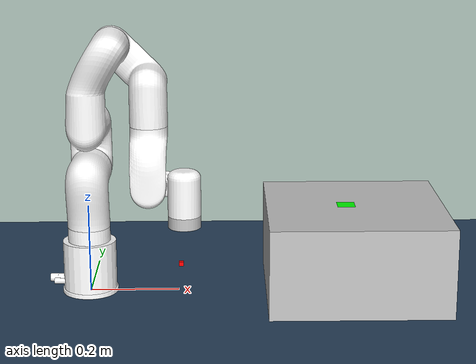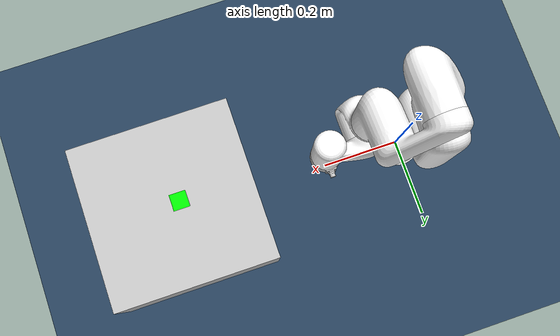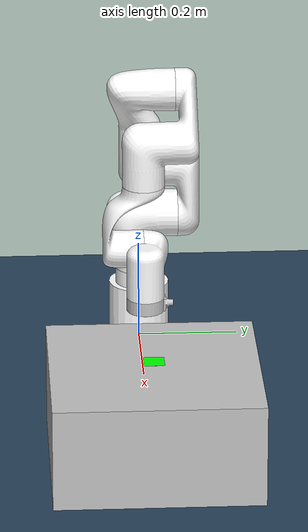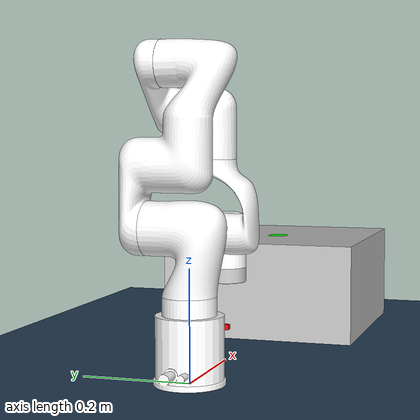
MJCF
<mujoco model="xarm6 scene">
    <include file="xarm6_no_gripper.xml"/>

    <statistic center="0.2 0 0.4" extent=".65"/>

    <visual>
        <headlight diffuse="0.6 0.6 0.6" ambient="0.3 0.3 0.3" specular="0 0 0"/>
        <rgba haze="0.15 0.25 0.35 1"/>
        <global azimuth="150" elevation="-20"/>
    </visual>

    <asset>
        <texture type="skybox" builtin="gradient" rgb1="0.3 0.5 0.7" rgb2="0 0 0" width="512" height="3072"/>
        <texture type="2d" name="groundplane" builtin="checker" mark="edge" rgb1="0.2 0.3 0.4" rgb2="0.1 0.2 0.3"
            markrgb="0.8 0.8 0.8" width="300" height="300"/>
        <material name="groundplane" texture="groundplane" texuniform="true" texrepeat="5 5" reflectance="0.2"/>
    </asset>

    <worldbody>
        <light pos="0 0 1.5" dir="0 0 -1" directional="true"/>
        <geom name="floor" size="1 1 " type="plane" material="groundplane" condim="3" contype="1" conaffinity="1"/>
        <geom type="cylinder" size=".06 .06" pos="0 0 .06" rgba="1 1 1 1"/>
        <body name="wall" pos="0.6 0.0 0.1">
            <geom type="box" class = "collision" group = "0" size=".2 .2 .1"  rgba="0.753 0.753 0.753 1"/>
            <site name="target" type="box" size="0.02 0.02 0.0001" pos="-0.02 0 0.1" rgba="0 1 0 1" />
        </body>
    </worldbody>

    <!-- Déclaration du capteur de force -->
    <sensor>
        <force name="contact_force" site="ee_center_site" />
    </sensor>
</mujoco>

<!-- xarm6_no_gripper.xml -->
<mujoco model="xarm6">
  <compiler angle="radian" autolimits="true" meshdir="meshes"/>

  <option integrator="implicitfast"/>

  <asset>
    <material name="white" rgba="1 1 1 1"/>
    <material name="gray" rgba="0.753 0.753 0.753 1"/>
    <material name="black" rgba="0.149 0.149 0.149 1"/>

    <mesh file="link_base.stl"/>
    <mesh file="link1.stl"/>
    <mesh file="link2.stl"/>
    <mesh file="link3.stl"/>
    <mesh file="link4.stl"/>
    <mesh file="link5.stl"/>
    <mesh file="end_tool.stl"/>
    <mesh file="base_link.stl"/>
  </asset>

  <default>
    <default class="xarm6">
      <geom type="mesh" material="white"/>
      <joint axis="0 0 1" range="-6.28319 6.28319" frictionloss="1"/>
      <general biastype="affine" ctrlrange="-6.28319 6.28319"/>
      <default class="size1">
        <joint damping="10"/>
        <general gainprm="1500" biasprm="0 -1500 -150" forcerange="-50 50"/>
      </default>
      <default class="size2">
        <joint damping="5"/>
        <general gainprm="1000" biasprm="0 -1000 -100" forcerange="-30 30"/>
      </default>
      <default class="size3">
        <joint damping="2"/>
        <general gainprm="800" biasprm="0 -800 -80" forcerange="-20 20"/>
      </default>
      <site size="0.001" rgba="1 0 0 1" group="4"/>
    </default>
      <default class="collision">
      <geom group="0" condim="3"/>
    </default>
  </default>

  <worldbody>
    <body name="link_base" pos="0 0 0.061" childclass="xarm6">
      <geom mesh="link_base"/>
      <body name="link1" pos="0 0 0.0915">
        <joint name="joint1" class="size1"/>
        <geom mesh="link1"/>
        <body name="link2" pos="0 0.0775 0.115" quat="1 -1 0 0">
          <joint name="joint2" range="-2.059 2.0944" class="size1"/>
          <geom mesh="link2"/>
          <body name="link3" pos="0.053 -0.28478 -0.00817" quat="0 0 0 1">
            <joint name="joint3" class="size2"/>
            <geom mesh="link3"/>
            <body name="link4" pos="-0.08578 -0.16933 -0.06658" quat="0.5 0.5 -0.5 0.5">
              <joint name="joint4" class="size2"/>
              <geom mesh="link4"/>
              <body name="link5" pos="0 0 0.13555" quat="0.5 -0.5 0.5 -0.5 ">
                <joint name="joint5" class="size2"/>
                <geom mesh="link5"/>
                <body name="link6" pos="-0.077 -0.071 0" quat="0.5 0.5 -0.5 0.5">
                  <joint name="joint6" class="size3"/>
                  <geom material="gray" mesh="end_tool"/>

                  <body name="ee_center_body" pos="-0.00275 -0.00878 0.1144" quat="0 0 0 0">
                    <site name="ee_center_site" size="0.01" group="3"/>
                    <!-- Adjusting position and size for better visibility -->
                    <geom name="end_effector" class = "collision" type="box" size="0.005 0.005 0.005" rgba="1 0 0 1"/>
                  </body>
                </body>

              </body>

            </body>
          </body>
       </body>
      </body>
    </body>
  </worldbody>

    <actuator>
    <general name="act1" joint="joint1" class="size1"/>
    <general name="act2" joint="joint2" class="size1" ctrlrange="-2.05 2.05"/>
    <general name="act3" joint="joint3" class="size2" ctrlrange="-3.9 0"/>
    <general name="act4" joint="joint4" class="size2"/>
    <general name="act5" joint="joint5" class="size3" ctrlrange="-1.67 3.12"/>
    <general name="act6" joint="joint6" class="size3"/>
  </actuator>

</mujoco>
